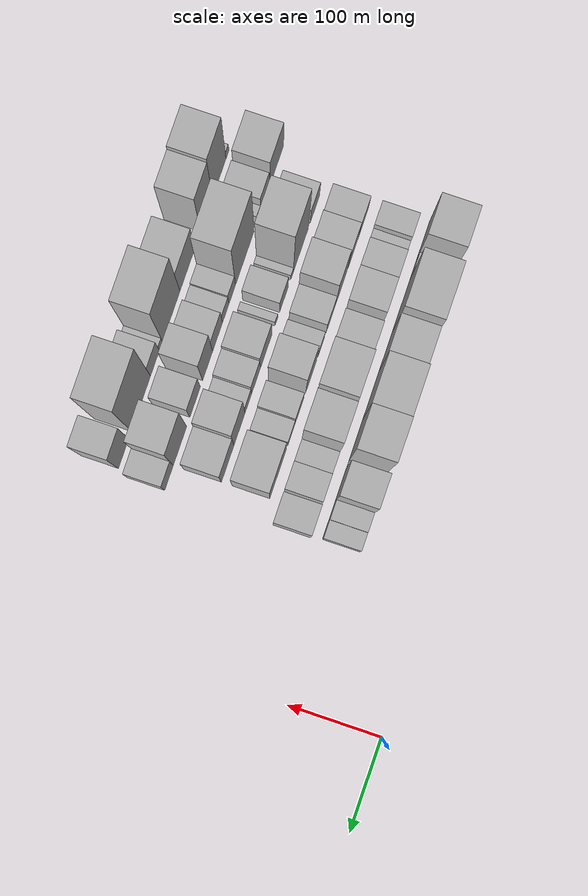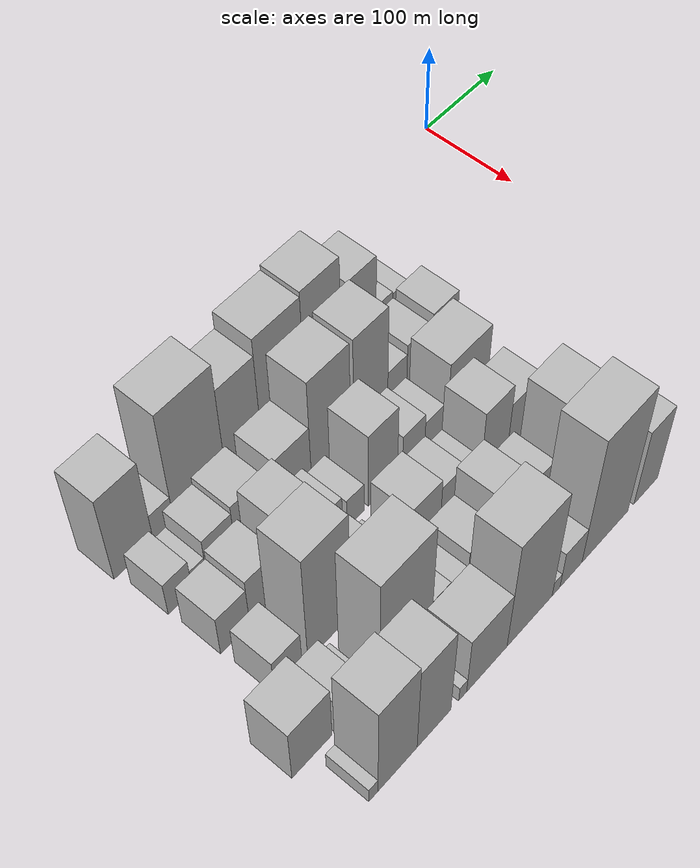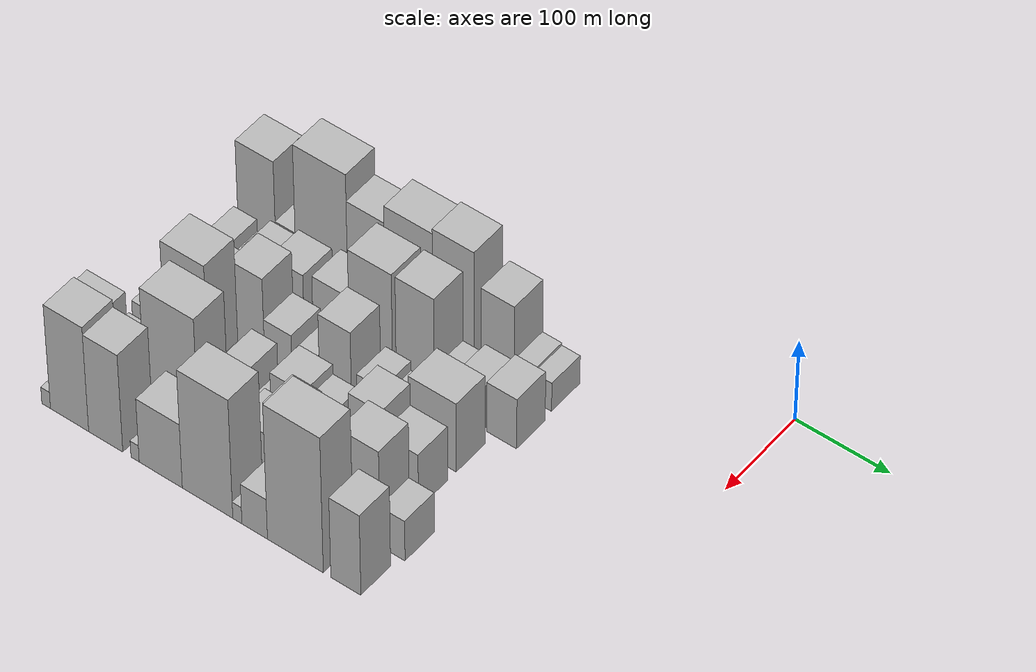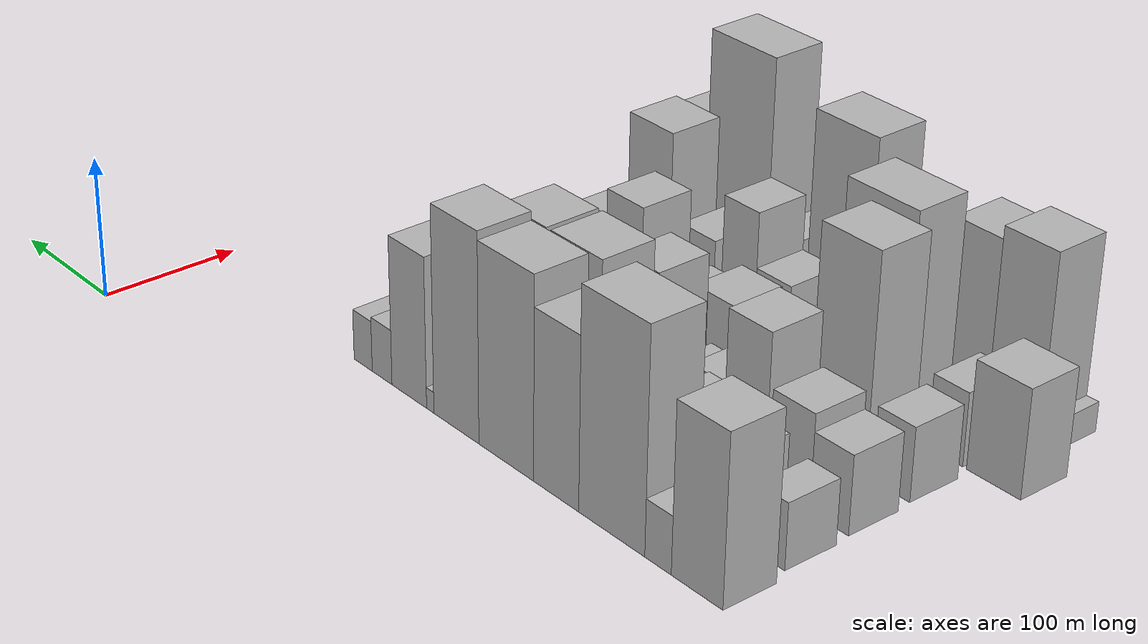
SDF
<sdf version="1.6">
 <world name="default">
  <model name="building_11">
   <static>1</static>
   <pose>100.0000 -494.0086 0 0.000000 0.000000 0.000000</pose>
   <link name="link">
    <pose>0 0 57.00 0 0 0</pose>
    <collision name="collision"><geometry><box><size>40.0000 42.3107 114.0000</size></box></geometry></collision>
    <visual name="visual">
     <cast_shadows>0</cast_shadows>
     <geometry><box><size>40.0000 42.3107 114.0000</size></box></geometry>
     <material>
      <script>
       <uri>model://HANNAS_wall/materials/scripts</uri>
       <uri>model://HANNAS_wall/materials/textures</uri>
       <name>vrc/HANNAS_wall</name>
      </script>
     </material>
    </visual>
   </link>
  </model>
  <model name="building_12">
   <static>1</static>
   <pose>100.0000 -461.6784 0 0.000000 0.000000 0.000000</pose>
   <link name="link">
    <pose>0 0 19.50 0 0 0</pose>
    <collision name="collision"><geometry><box><size>40.0000 22.3498 39.0000</size></box></geometry></collision>
    <visual name="visual">
     <cast_shadows>0</cast_shadows>
     <geometry><box><size>40.0000 22.3498 39.0000</size></box></geometry>
     <material>
      <script>
       <uri>model://HANNAS_wall/materials/scripts</uri>
       <uri>model://HANNAS_wall/materials/textures</uri>
       <name>vrc/HANNAS_wall</name>
      </script>
     </material>
    </visual>
   </link>
  </model>
  <model name="building_13">
   <static>1</static>
   <pose>100.0000 -421.5233 0 0.000000 0.000000 0.000000</pose>
   <link name="link">
    <pose>0 0 75.00 0 0 0</pose>
    <collision name="collision"><geometry><box><size>40.0000 57.9604 150.0000</size></box></geometry></collision>
    <visual name="visual">
     <cast_shadows>0</cast_shadows>
     <geometry><box><size>40.0000 57.9604 150.0000</size></box></geometry>
     <material>
      <script>
       <uri>model://HANNAS_wall/materials/scripts</uri>
       <uri>model://HANNAS_wall/materials/textures</uri>
       <name>vrc/HANNAS_wall</name>
      </script>
     </material>
    </visual>
   </link>
  </model>
  <model name="building_14">
   <static>1</static>
   <pose>100.0000 -371.8786 0 0.000000 0.000000 0.000000</pose>
   <link name="link">
    <pose>0 0 58.50 0 0 0</pose>
    <collision name="collision"><geometry><box><size>40.0000 41.3288 117.0000</size></box></geometry></collision>
    <visual name="visual">
     <cast_shadows>0</cast_shadows>
     <geometry><box><size>40.0000 41.3288 117.0000</size></box></geometry>
     <material>
      <script>
       <uri>model://HANNAS_wall/materials/scripts</uri>
       <uri>model://HANNAS_wall/materials/textures</uri>
       <name>vrc/HANNAS_wall</name>
      </script>
     </material>
    </visual>
   </link>
  </model>
  <model name="building_15">
   <static>1</static>
   <pose>100.0000 -325.0603 0 0.000000 0.000000 0.000000</pose>
   <link name="link">
    <pose>0 0 69.00 0 0 0</pose>
    <collision name="collision"><geometry><box><size>40.0000 52.3078 138.0000</size></box></geometry></collision>
    <visual name="visual">
     <cast_shadows>0</cast_shadows>
     <geometry><box><size>40.0000 52.3078 138.0000</size></box></geometry>
     <material>
      <script>
       <uri>model://HANNAS_wall/materials/scripts</uri>
       <uri>model://HANNAS_wall/materials/textures</uri>
       <name>vrc/HANNAS_wall</name>
      </script>
     </material>
    </visual>
   </link>
  </model>
  <model name="building_16">
   <static>1</static>
   <pose>100.0000 -276.4552 0 0.000000 0.000000 0.000000</pose>
   <link name="link">
    <pose>0 0 72.00 0 0 0</pose>
    <collision name="collision"><geometry><box><size>40.0000 44.9025 144.0000</size></box></geometry></collision>
    <visual name="visual">
     <cast_shadows>0</cast_shadows>
     <geometry><box><size>40.0000 44.9025 144.0000</size></box></geometry>
     <material>
      <script>
       <uri>model://HANNAS_wall/materials/scripts</uri>
       <uri>model://HANNAS_wall/materials/textures</uri>
       <name>vrc/HANNAS_wall</name>
      </script>
     </material>
    </visual>
   </link>
  </model>
  <model name="building_17">
   <static>1</static>
   <pose>100.0000 -250.2787 0 0.000000 0.000000 0.000000</pose>
   <link name="link">
    <pose>0 0 7.50 0 0 0</pose>
    <collision name="collision"><geometry><box><size>40.0000 7.4505 15.0000</size></box></geometry></collision>
    <visual name="visual">
     <cast_shadows>0</cast_shadows>
     <geometry><box><size>40.0000 7.4505 15.0000</size></box></geometry>
     <material>
      <script>
       <uri>model://HANNAS_wall/materials/scripts</uri>
       <uri>model://HANNAS_wall/materials/textures</uri>
       <name>vrc/HANNAS_wall</name>
      </script>
     </material>
    </visual>
   </link>
  </model>
  <model name="building_18">
   <static>1</static>
   <pose>100.0000 -228.5596 0 0.000000 0.000000 0.000000</pose>
   <link name="link">
    <pose>0 0 52.50 0 0 0</pose>
    <collision name="collision"><geometry><box><size>40.0000 35.9877 105.0000</size></box></geometry></collision>
    <visual name="visual">
     <cast_shadows>0</cast_shadows>
     <geometry><box><size>40.0000 35.9877 105.0000</size></box></geometry>
     <material>
      <script>
       <uri>model://HANNAS_wall/materials/scripts</uri>
       <uri>model://HANNAS_wall/materials/textures</uri>
       <name>vrc/HANNAS_wall</name>
      </script>
     </material>
    </visual>
   </link>
  </model>
  <model name="building_19">
   <static>1</static>
   <pose>100.0000 -200.0967 0 0.000000 0.000000 0.000000</pose>
   <link name="link">
    <pose>0 0 19.50 0 0 0</pose>
    <collision name="collision"><geometry><box><size>40.0000 20.9381 39.0000</size></box></geometry></collision>
    <visual name="visual">
     <cast_shadows>0</cast_shadows>
     <geometry><box><size>40.0000 20.9381 39.0000</size></box></geometry>
     <material>
      <script>
       <uri>model://HANNAS_wall/materials/scripts</uri>
       <uri>model://HANNAS_wall/materials/textures</uri>
       <name>vrc/HANNAS_wall</name>
      </script>
     </material>
    </visual>
   </link>
  </model>
  <model name="building_20">
   <static>1</static>
   <pose>100.0000 -179.8525 0 0.000000 0.000000 0.000000</pose>
   <link name="link">
    <pose>0 0 18.00 0 0 0</pose>
    <collision name="collision"><geometry><box><size>40.0000 19.5503 36.0000</size></box></geometry></collision>
    <visual name="visual">
     <cast_shadows>0</cast_shadows>
     <geometry><box><size>40.0000 19.5503 36.0000</size></box></geometry>
     <material>
      <script>
       <uri>model://HANNAS_wall/materials/scripts</uri>
       <uri>model://HANNAS_wall/materials/textures</uri>
       <name>vrc/HANNAS_wall</name>
      </script>
     </material>
    </visual>
   </link>
  </model>
  <model name="building_59">
   <static>1</static>
   <pose>152.0000 -496.1585 0 0.000000 0.000000 0.000000</pose>
   <link name="link">
    <pose>0 0 22.50 0 0 0</pose>
    <collision name="collision"><geometry><box><size>40.0000 25.9210 45.0000</size></box></geometry></collision>
    <visual name="visual">
     <cast_shadows>0</cast_shadows>
     <geometry><box><size>40.0000 25.9210 45.0000</size></box></geometry>
     <material>
      <script>
       <uri>model://HANNAS_wall/materials/scripts</uri>
       <uri>model://HANNAS_wall/materials/textures</uri>
       <name>vrc/HANNAS_wall</name>
      </script>
     </material>
    </visual>
   </link>
  </model>
  <model name="building_60">
   <static>1</static>
   <pose>152.0000 -475.3873 0 0.000000 0.000000 0.000000</pose>
   <link name="link">
    <pose>0 0 15.00 0 0 0</pose>
    <collision name="collision"><geometry><box><size>40.0000 15.6216 30.0000</size></box></geometry></collision>
    <visual name="visual">
     <cast_shadows>0</cast_shadows>
     <geometry><box><size>40.0000 15.6216 30.0000</size></box></geometry>
     <material>
      <script>
       <uri>model://HANNAS_wall/materials/scripts</uri>
       <uri>model://HANNAS_wall/materials/textures</uri>
       <name>vrc/HANNAS_wall</name>
      </script>
     </material>
    </visual>
   </link>
  </model>
  <model name="building_61">
   <static>1</static>
   <pose>152.0000 -451.9017 0 0.000000 0.000000 0.000000</pose>
   <link name="link">
    <pose>0 0 27.00 0 0 0</pose>
    <collision name="collision"><geometry><box><size>40.0000 31.3496 54.0000</size></box></geometry></collision>
    <visual name="visual">
     <cast_shadows>0</cast_shadows>
     <geometry><box><size>40.0000 31.3496 54.0000</size></box></geometry>
     <material>
      <script>
       <uri>model://HANNAS_wall/materials/scripts</uri>
       <uri>model://HANNAS_wall/materials/textures</uri>
       <name>vrc/HANNAS_wall</name>
      </script>
     </material>
    </visual>
   </link>
  </model>
  <model name="building_62">
   <static>1</static>
   <pose>152.0000 -417.8769 0 0.000000 0.000000 0.000000</pose>
   <link name="link">
    <pose>0 0 31.50 0 0 0</pose>
    <collision name="collision"><geometry><box><size>40.0000 36.7000 63.0000</size></box></geometry></collision>
    <visual name="visual">
     <cast_shadows>0</cast_shadows>
     <geometry><box><size>40.0000 36.7000 63.0000</size></box></geometry>
     <material>
      <script>
       <uri>model://HANNAS_wall/materials/scripts</uri>
       <uri>model://HANNAS_wall/materials/textures</uri>
       <name>vrc/HANNAS_wall</name>
      </script>
     </material>
    </visual>
   </link>
  </model>
  <model name="building_63">
   <static>1</static>
   <pose>152.0000 -369.4422 0 0.000000 0.000000 0.000000</pose>
   <link name="link">
    <pose>0 0 34.50 0 0 0</pose>
    <collision name="collision"><geometry><box><size>40.0000 40.1694 69.0000</size></box></geometry></collision>
    <visual name="visual">
     <cast_shadows>0</cast_shadows>
     <geometry><box><size>40.0000 40.1694 69.0000</size></box></geometry>
     <material>
      <script>
       <uri>model://HANNAS_wall/materials/scripts</uri>
       <uri>model://HANNAS_wall/materials/textures</uri>
       <name>vrc/HANNAS_wall</name>
      </script>
     </material>
    </visual>
   </link>
  </model>
  <model name="building_64">
   <static>1</static>
   <pose>152.0000 -325.7028 0 0.000000 0.000000 0.000000</pose>
   <link name="link">
    <pose>0 0 64.50 0 0 0</pose>
    <collision name="collision"><geometry><box><size>40.0000 47.3093 129.0000</size></box></geometry></collision>
    <visual name="visual">
     <cast_shadows>0</cast_shadows>
     <geometry><box><size>40.0000 47.3093 129.0000</size></box></geometry>
     <material>
      <script>
       <uri>model://HANNAS_wall/materials/scripts</uri>
       <uri>model://HANNAS_wall/materials/textures</uri>
       <name>vrc/HANNAS_wall</name>
      </script>
     </material>
    </visual>
   </link>
  </model>
  <model name="building_65">
   <static>1</static>
   <pose>152.0000 -277.2909 0 0.000000 0.000000 0.000000</pose>
   <link name="link">
    <pose>0 0 64.50 0 0 0</pose>
    <collision name="collision"><geometry><box><size>40.0000 41.5145 129.0000</size></box></geometry></collision>
    <visual name="visual">
     <cast_shadows>0</cast_shadows>
     <geometry><box><size>40.0000 41.5145 129.0000</size></box></geometry>
     <material>
      <script>
       <uri>model://HANNAS_wall/materials/scripts</uri>
       <uri>model://HANNAS_wall/materials/textures</uri>
       <name>vrc/HANNAS_wall</name>
      </script>
     </material>
    </visual>
   </link>
  </model>
  <model name="building_66">
   <static>1</static>
   <pose>152.0000 -244.4971 0 0.000000 0.000000 0.000000</pose>
   <link name="link">
    <pose>0 0 21.00 0 0 0</pose>
    <collision name="collision"><geometry><box><size>40.0000 24.0732 42.0000</size></box></geometry></collision>
    <visual name="visual">
     <cast_shadows>0</cast_shadows>
     <geometry><box><size>40.0000 24.0732 42.0000</size></box></geometry>
     <material>
      <script>
       <uri>model://HANNAS_wall/materials/scripts</uri>
       <uri>model://HANNAS_wall/materials/textures</uri>
       <name>vrc/HANNAS_wall</name>
      </script>
     </material>
    </visual>
   </link>
  </model>
  <model name="building_67">
   <static>1</static>
   <pose>152.0000 -217.7612 0 0.000000 0.000000 0.000000</pose>
   <link name="link">
    <pose>0 0 27.00 0 0 0</pose>
    <collision name="collision"><geometry><box><size>40.0000 29.3986 54.0000</size></box></geometry></collision>
    <visual name="visual">
     <cast_shadows>0</cast_shadows>
     <geometry><box><size>40.0000 29.3986 54.0000</size></box></geometry>
     <material>
      <script>
       <uri>model://HANNAS_wall/materials/scripts</uri>
       <uri>model://HANNAS_wall/materials/textures</uri>
       <name>vrc/HANNAS_wall</name>
      </script>
     </material>
    </visual>
   </link>
  </model>
  <model name="building_68">
   <static>1</static>
   <pose>152.0000 -183.9146 0 0.000000 0.000000 0.000000</pose>
   <link name="link">
    <pose>0 0 31.50 0 0 0</pose>
    <collision name="collision"><geometry><box><size>40.0000 32.2947 63.0000</size></box></geometry></collision>
    <visual name="visual">
     <cast_shadows>0</cast_shadows>
     <geometry><box><size>40.0000 32.2947 63.0000</size></box></geometry>
     <material>
      <script>
       <uri>model://HANNAS_wall/materials/scripts</uri>
       <uri>model://HANNAS_wall/materials/textures</uri>
       <name>vrc/HANNAS_wall</name>
      </script>
     </material>
    </visual>
   </link>
  </model>
  <model name="building_111">
   <static>1</static>
   <pose>204.0000 -491.1103 0 0.000000 0.000000 0.000000</pose>
   <link name="link">
    <pose>0 0 27.00 0 0 0</pose>
    <collision name="collision"><geometry><box><size>40.0000 31.3531 54.0000</size></box></geometry></collision>
    <visual name="visual">
     <cast_shadows>0</cast_shadows>
     <geometry><box><size>40.0000 31.3531 54.0000</size></box></geometry>
     <material>
      <script>
       <uri>model://HANNAS_wall/materials/scripts</uri>
       <uri>model://HANNAS_wall/materials/textures</uri>
       <name>vrc/HANNAS_wall</name>
      </script>
     </material>
    </visual>
   </link>
  </model>
  <model name="building_112">
   <static>1</static>
   <pose>204.0000 -458.0717 0 0.000000 0.000000 0.000000</pose>
   <link name="link">
    <pose>0 0 33.00 0 0 0</pose>
    <collision name="collision"><geometry><box><size>40.0000 34.7243 66.0000</size></box></geometry></collision>
    <visual name="visual">
     <cast_shadows>0</cast_shadows>
     <geometry><box><size>40.0000 34.7243 66.0000</size></box></geometry>
     <material>
      <script>
       <uri>model://HANNAS_wall/materials/scripts</uri>
       <uri>model://HANNAS_wall/materials/textures</uri>
       <name>vrc/HANNAS_wall</name>
      </script>
     </material>
    </visual>
   </link>
  </model>
  <model name="building_113">
   <static>1</static>
   <pose>204.0000 -419.4818 0 0.000000 0.000000 0.000000</pose>
   <link name="link">
    <pose>0 0 51.00 0 0 0</pose>
    <collision name="collision"><geometry><box><size>40.0000 36.4555 102.0000</size></box></geometry></collision>
    <visual name="visual">
     <cast_shadows>0</cast_shadows>
     <geometry><box><size>40.0000 36.4555 102.0000</size></box></geometry>
     <material>
      <script>
       <uri>model://HANNAS_wall/materials/scripts</uri>
       <uri>model://HANNAS_wall/materials/textures</uri>
       <name>vrc/HANNAS_wall</name>
      </script>
     </material>
    </visual>
   </link>
  </model>
  <model name="building_114">
   <static>1</static>
   <pose>204.0000 -386.0688 0 0.000000 0.000000 0.000000</pose>
   <link name="link">
    <pose>0 0 25.50 0 0 0</pose>
    <collision name="collision"><geometry><box><size>40.0000 30.3705 51.0000</size></box></geometry></collision>
    <visual name="visual">
     <cast_shadows>0</cast_shadows>
     <geometry><box><size>40.0000 30.3705 51.0000</size></box></geometry>
     <material>
      <script>
       <uri>model://HANNAS_wall/materials/scripts</uri>
       <uri>model://HANNAS_wall/materials/textures</uri>
       <name>vrc/HANNAS_wall</name>
      </script>
     </material>
    </visual>
   </link>
  </model>
  <model name="building_115">
   <static>1</static>
   <pose>204.0000 -355.6898 0 0.000000 0.000000 0.000000</pose>
   <link name="link">
    <pose>0 0 19.50 0 0 0</pose>
    <collision name="collision"><geometry><box><size>40.0000 20.3875 39.0000</size></box></geometry></collision>
    <visual name="visual">
     <cast_shadows>0</cast_shadows>
     <geometry><box><size>40.0000 20.3875 39.0000</size></box></geometry>
     <material>
      <script>
       <uri>model://HANNAS_wall/materials/scripts</uri>
       <uri>model://HANNAS_wall/materials/textures</uri>
       <name>vrc/HANNAS_wall</name>
      </script>
     </material>
    </visual>
   </link>
  </model>
  <model name="building_116">
   <static>1</static>
   <pose>204.0000 -323.0249 0 0.000000 0.000000 0.000000</pose>
   <link name="link">
    <pose>0 0 49.50 0 0 0</pose>
    <collision name="collision"><geometry><box><size>40.0000 34.9424 99.0000</size></box></geometry></collision>
    <visual name="visual">
     <cast_shadows>0</cast_shadows>
     <geometry><box><size>40.0000 34.9424 99.0000</size></box></geometry>
     <material>
      <script>
       <uri>model://HANNAS_wall/materials/scripts</uri>
       <uri>model://HANNAS_wall/materials/textures</uri>
       <name>vrc/HANNAS_wall</name>
      </script>
     </material>
    </visual>
   </link>
  </model>
  <model name="building_117">
   <static>1</static>
   <pose>204.0000 -285.7925 0 0.000000 0.000000 0.000000</pose>
   <link name="link">
    <pose>0 0 25.50 0 0 0</pose>
    <collision name="collision"><geometry><box><size>40.0000 27.5222 51.0000</size></box></geometry></collision>
    <visual name="visual">
     <cast_shadows>0</cast_shadows>
     <geometry><box><size>40.0000 27.5222 51.0000</size></box></geometry>
     <material>
      <script>
       <uri>model://HANNAS_wall/materials/scripts</uri>
       <uri>model://HANNAS_wall/materials/textures</uri>
       <name>vrc/HANNAS_wall</name>
      </script>
     </material>
    </visual>
   </link>
  </model>
  <model name="building_118">
   <static>1</static>
   <pose>204.0000 -260.3984 0 0.000000 0.000000 0.000000</pose>
   <link name="link">
    <pose>0 0 19.50 0 0 0</pose>
    <collision name="collision"><geometry><box><size>40.0000 23.2660 39.0000</size></box></geometry></collision>
    <visual name="visual">
     <cast_shadows>0</cast_shadows>
     <geometry><box><size>40.0000 23.2660 39.0000</size></box></geometry>
     <material>
      <script>
       <uri>model://HANNAS_wall/materials/scripts</uri>
       <uri>model://HANNAS_wall/materials/textures</uri>
       <name>vrc/HANNAS_wall</name>
      </script>
     </material>
    </visual>
   </link>
  </model>
  <model name="building_119">
   <static>1</static>
   <pose>204.0000 -217.9779 0 0.000000 0.000000 0.000000</pose>
   <link name="link">
    <pose>0 0 43.50 0 0 0</pose>
    <collision name="collision"><geometry><box><size>40.0000 51.5750 87.0000</size></box></geometry></collision>
    <visual name="visual">
     <cast_shadows>0</cast_shadows>
     <geometry><box><size>40.0000 51.5750 87.0000</size></box></geometry>
     <material>
      <script>
       <uri>model://HANNAS_wall/materials/scripts</uri>
       <uri>model://HANNAS_wall/materials/textures</uri>
       <name>vrc/HANNAS_wall</name>
      </script>
     </material>
    </visual>
   </link>
  </model>
  <model name="building_161">
   <static>1</static>
   <pose>256.0000 -489.5525 0 0.000000 0.000000 0.000000</pose>
   <link name="link">
    <pose>0 0 25.50 0 0 0</pose>
    <collision name="collision"><geometry><box><size>40.0000 29.8540 51.0000</size></box></geometry></collision>
    <visual name="visual">
     <cast_shadows>0</cast_shadows>
     <geometry><box><size>40.0000 29.8540 51.0000</size></box></geometry>
     <material>
      <script>
       <uri>model://HANNAS_wall/materials/scripts</uri>
       <uri>model://HANNAS_wall/materials/textures</uri>
       <name>vrc/HANNAS_wall</name>
      </script>
     </material>
    </visual>
   </link>
  </model>
  <model name="building_162">
   <static>1</static>
   <pose>256.0000 -444.6601 0 0.000000 0.000000 0.000000</pose>
   <link name="link">
    <pose>0 0 75.00 0 0 0</pose>
    <collision name="collision"><geometry><box><size>40.0000 47.9308 150.0000</size></box></geometry></collision>
    <visual name="visual">
     <cast_shadows>0</cast_shadows>
     <geometry><box><size>40.0000 47.9308 150.0000</size></box></geometry>
     <material>
      <script>
       <uri>model://HANNAS_wall/materials/scripts</uri>
       <uri>model://HANNAS_wall/materials/textures</uri>
       <name>vrc/HANNAS_wall</name>
      </script>
     </material>
    </visual>
   </link>
  </model>
  <model name="building_163">
   <static>1</static>
   <pose>256.0000 -416.4620 0 0.000000 0.000000 0.000000</pose>
   <link name="link">
    <pose>0 0 10.50 0 0 0</pose>
    <collision name="collision"><geometry><box><size>40.0000 8.4655 21.0000</size></box></geometry></collision>
    <visual name="visual">
     <cast_shadows>0</cast_shadows>
     <geometry><box><size>40.0000 8.4655 21.0000</size></box></geometry>
     <material>
      <script>
       <uri>model://HANNAS_wall/materials/scripts</uri>
       <uri>model://HANNAS_wall/materials/textures</uri>
       <name>vrc/HANNAS_wall</name>
      </script>
     </material>
    </visual>
   </link>
  </model>
  <model name="building_164">
   <static>1</static>
   <pose>256.0000 -390.4675 0 0.000000 0.000000 0.000000</pose>
   <link name="link">
    <pose>0 0 24.00 0 0 0</pose>
    <collision name="collision"><geometry><box><size>40.0000 27.5234 48.0000</size></box></geometry></collision>
    <visual name="visual">
     <cast_shadows>0</cast_shadows>
     <geometry><box><size>40.0000 27.5234 48.0000</size></box></geometry>
     <material>
      <script>
       <uri>model://HANNAS_wall/materials/scripts</uri>
       <uri>model://HANNAS_wall/materials/textures</uri>
       <name>vrc/HANNAS_wall</name>
      </script>
     </material>
    </visual>
   </link>
  </model>
  <model name="building_165">
   <static>1</static>
   <pose>256.0000 -366.2476 0 0.000000 0.000000 0.000000</pose>
   <link name="link">
    <pose>0 0 10.50 0 0 0</pose>
    <collision name="collision"><geometry><box><size>40.0000 8.9162 21.0000</size></box></geometry></collision>
    <visual name="visual">
     <cast_shadows>0</cast_shadows>
     <geometry><box><size>40.0000 8.9162 21.0000</size></box></geometry>
     <material>
      <script>
       <uri>model://HANNAS_wall/materials/scripts</uri>
       <uri>model://HANNAS_wall/materials/textures</uri>
       <name>vrc/HANNAS_wall</name>
      </script>
     </material>
    </visual>
   </link>
  </model>
  <model name="building_166">
   <static>1</static>
   <pose>256.0000 -333.5906 0 0.000000 0.000000 0.000000</pose>
   <link name="link">
    <pose>0 0 31.50 0 0 0</pose>
    <collision name="collision"><geometry><box><size>40.0000 36.3980 63.0000</size></box></geometry></collision>
    <visual name="visual">
     <cast_shadows>0</cast_shadows>
     <geometry><box><size>40.0000 36.3980 63.0000</size></box></geometry>
     <material>
      <script>
       <uri>model://HANNAS_wall/materials/scripts</uri>
       <uri>model://HANNAS_wall/materials/textures</uri>
       <name>vrc/HANNAS_wall</name>
      </script>
     </material>
    </visual>
   </link>
  </model>
  <model name="building_167">
   <static>1</static>
   <pose>256.0000 -301.4216 0 0.000000 0.000000 0.000000</pose>
   <link name="link">
    <pose>0 0 25.50 0 0 0</pose>
    <collision name="collision"><geometry><box><size>40.0000 27.9401 51.0000</size></box></geometry></collision>
    <visual name="visual">
     <cast_shadows>0</cast_shadows>
     <geometry><box><size>40.0000 27.9401 51.0000</size></box></geometry>
     <material>
      <script>
       <uri>model://HANNAS_wall/materials/scripts</uri>
       <uri>model://HANNAS_wall/materials/textures</uri>
       <name>vrc/HANNAS_wall</name>
      </script>
     </material>
    </visual>
   </link>
  </model>
  <model name="building_168">
   <static>1</static>
   <pose>256.0000 -276.9595 0 0.000000 0.000000 0.000000</pose>
   <link name="link">
    <pose>0 0 18.00 0 0 0</pose>
    <collision name="collision"><geometry><box><size>40.0000 20.9841 36.0000</size></box></geometry></collision>
    <visual name="visual">
     <cast_shadows>0</cast_shadows>
     <geometry><box><size>40.0000 20.9841 36.0000</size></box></geometry>
     <material>
      <script>
       <uri>model://HANNAS_wall/materials/scripts</uri>
       <uri>model://HANNAS_wall/materials/textures</uri>
       <name>vrc/HANNAS_wall</name>
      </script>
     </material>
    </visual>
   </link>
  </model>
  <model name="building_169">
   <static>1</static>
   <pose>256.0000 -249.1043 0 0.000000 0.000000 0.000000</pose>
   <link name="link">
    <pose>0 0 48.00 0 0 0</pose>
    <collision name="collision"><geometry><box><size>40.0000 34.7263 96.0000</size></box></geometry></collision>
    <visual name="visual">
     <cast_shadows>0</cast_shadows>
     <geometry><box><size>40.0000 34.7263 96.0000</size></box></geometry>
     <material>
      <script>
       <uri>model://HANNAS_wall/materials/scripts</uri>
       <uri>model://HANNAS_wall/materials/textures</uri>
       <name>vrc/HANNAS_wall</name>
      </script>
     </material>
    </visual>
   </link>
  </model>
  <model name="building_170">
   <static>1</static>
   <pose>256.0000 -211.9956 0 0.000000 0.000000 0.000000</pose>
   <link name="link">
    <pose>0 0 34.50 0 0 0</pose>
    <collision name="collision"><geometry><box><size>40.0000 39.4911 69.0000</size></box></geometry></collision>
    <visual name="visual">
     <cast_shadows>0</cast_shadows>
     <geometry><box><size>40.0000 39.4911 69.0000</size></box></geometry>
     <material>
      <script>
       <uri>model://HANNAS_wall/materials/scripts</uri>
       <uri>model://HANNAS_wall/materials/textures</uri>
       <name>vrc/HANNAS_wall</name>
      </script>
     </material>
    </visual>
   </link>
  </model>
  <model name="building_208">
   <static>1</static>
   <pose>308.0000 -521.5534 0 0.000000 0.000000 0.000000</pose>
   <link name="link">
    <pose>0 0 37.50 0 0 0</pose>
    <collision name="collision"><geometry><box><size>40.0000 42.3962 75.0000</size></box></geometry></collision>
    <visual name="visual">
     <cast_shadows>0</cast_shadows>
     <geometry><box><size>40.0000 42.3962 75.0000</size></box></geometry>
     <material>
      <script>
       <uri>model://HANNAS_wall/materials/scripts</uri>
       <uri>model://HANNAS_wall/materials/textures</uri>
       <name>vrc/HANNAS_wall</name>
      </script>
     </material>
    </visual>
   </link>
  </model>
  <model name="building_209">
   <static>1</static>
   <pose>308.0000 -483.1942 0 0.000000 0.000000 0.000000</pose>
   <link name="link">
    <pose>0 0 25.50 0 0 0</pose>
    <collision name="collision"><geometry><box><size>40.0000 28.3223 51.0000</size></box></geometry></collision>
    <visual name="visual">
     <cast_shadows>0</cast_shadows>
     <geometry><box><size>40.0000 28.3223 51.0000</size></box></geometry>
     <material>
      <script>
       <uri>model://HANNAS_wall/materials/scripts</uri>
       <uri>model://HANNAS_wall/materials/textures</uri>
       <name>vrc/HANNAS_wall</name>
      </script>
     </material>
    </visual>
   </link>
  </model>
  <model name="building_210">
   <static>1</static>
   <pose>308.0000 -463.0001 0 0.000000 0.000000 0.000000</pose>
   <link name="link">
    <pose>0 0 13.50 0 0 0</pose>
    <collision name="collision"><geometry><box><size>40.0000 12.0659 27.0000</size></box></geometry></collision>
    <visual name="visual">
     <cast_shadows>0</cast_shadows>
     <geometry><box><size>40.0000 12.0659 27.0000</size></box></geometry>
     <material>
      <script>
       <uri>model://HANNAS_wall/materials/scripts</uri>
       <uri>model://HANNAS_wall/materials/textures</uri>
       <name>vrc/HANNAS_wall</name>
      </script>
     </material>
    </visual>
   </link>
  </model>
  <model name="building_211">
   <static>1</static>
   <pose>308.0000 -418.5583 0 0.000000 0.000000 0.000000</pose>
   <link name="link">
    <pose>0 0 75.00 0 0 0</pose>
    <collision name="collision"><geometry><box><size>40.0000 58.8177 150.0000</size></box></geometry></collision>
    <visual name="visual">
     <cast_shadows>0</cast_shadows>
     <geometry><box><size>40.0000 58.8177 150.0000</size></box></geometry>
     <material>
      <script>
       <uri>model://HANNAS_wall/materials/scripts</uri>
       <uri>model://HANNAS_wall/materials/textures</uri>
       <name>vrc/HANNAS_wall</name>
      </script>
     </material>
    </visual>
   </link>
  </model>
  <model name="building_212">
   <static>1</static>
   <pose>308.0000 -378.5823 0 0.000000 0.000000 0.000000</pose>
   <link name="link">
    <pose>0 0 21.00 0 0 0</pose>
    <collision name="collision"><geometry><box><size>40.0000 21.1342 42.0000</size></box></geometry></collision>
    <visual name="visual">
     <cast_shadows>0</cast_shadows>
     <geometry><box><size>40.0000 21.1342 42.0000</size></box></geometry>
     <material>
      <script>
       <uri>model://HANNAS_wall/materials/scripts</uri>
       <uri>model://HANNAS_wall/materials/textures</uri>
       <name>vrc/HANNAS_wall</name>
      </script>
     </material>
    </visual>
   </link>
  </model>
  <model name="building_213">
   <static>1</static>
   <pose>308.0000 -357.7737 0 0.000000 0.000000 0.000000</pose>
   <link name="link">
    <pose>0 0 18.00 0 0 0</pose>
    <collision name="collision"><geometry><box><size>40.0000 20.4831 36.0000</size></box></geometry></collision>
    <visual name="visual">
     <cast_shadows>0</cast_shadows>
     <geometry><box><size>40.0000 20.4831 36.0000</size></box></geometry>
     <material>
      <script>
       <uri>model://HANNAS_wall/materials/scripts</uri>
       <uri>model://HANNAS_wall/materials/textures</uri>
       <name>vrc/HANNAS_wall</name>
      </script>
     </material>
    </visual>
   </link>
  </model>
  <model name="building_214">
   <static>1</static>
   <pose>308.0000 -331.9394 0 0.000000 0.000000 0.000000</pose>
   <link name="link">
    <pose>0 0 28.50 0 0 0</pose>
    <collision name="collision"><geometry><box><size>40.0000 31.1856 57.0000</size></box></geometry></collision>
    <visual name="visual">
     <cast_shadows>0</cast_shadows>
     <geometry><box><size>40.0000 31.1856 57.0000</size></box></geometry>
     <material>
      <script>
       <uri>model://HANNAS_wall/materials/scripts</uri>
       <uri>model://HANNAS_wall/materials/textures</uri>
       <name>vrc/HANNAS_wall</name>
      </script>
     </material>
    </visual>
   </link>
  </model>
  <model name="building_215">
   <static>1</static>
   <pose>308.0000 -300.5163 0 0.000000 0.000000 0.000000</pose>
   <link name="link">
    <pose>0 0 48.00 0 0 0</pose>
    <collision name="collision"><geometry><box><size>40.0000 31.6606 96.0000</size></box></geometry></collision>
    <visual name="visual">
     <cast_shadows>0</cast_shadows>
     <geometry><box><size>40.0000 31.6606 96.0000</size></box></geometry>
     <material>
      <script>
       <uri>model://HANNAS_wall/materials/scripts</uri>
       <uri>model://HANNAS_wall/materials/textures</uri>
       <name>vrc/HANNAS_wall</name>
      </script>
     </material>
    </visual>
   </link>
  </model>
  <model name="building_216">
   <static>1</static>
   <pose>308.0000 -261.1857 0 0.000000 0.000000 0.000000</pose>
   <link name="link">
    <pose>0 0 30.00 0 0 0</pose>
    <collision name="collision"><geometry><box><size>40.0000 33.0006 60.0000</size></box></geometry></collision>
    <visual name="visual">
     <cast_shadows>0</cast_shadows>
     <geometry><box><size>40.0000 33.0006 60.0000</size></box></geometry>
     <material>
      <script>
       <uri>model://HANNAS_wall/materials/scripts</uri>
       <uri>model://HANNAS_wall/materials/textures</uri>
       <name>vrc/HANNAS_wall</name>
      </script>
     </material>
    </visual>
   </link>
  </model>
  <model name="building_217">
   <static>1</static>
   <pose>308.0000 -213.6222 0 0.000000 0.000000 0.000000</pose>
   <link name="link">
    <pose>0 0 60.00 0 0 0</pose>
    <collision name="collision"><geometry><box><size>40.0000 42.1264 120.0000</size></box></geometry></collision>
    <visual name="visual">
     <cast_shadows>0</cast_shadows>
     <geometry><box><size>40.0000 42.1264 120.0000</size></box></geometry>
     <material>
      <script>
       <uri>model://HANNAS_wall/materials/scripts</uri>
       <uri>model://HANNAS_wall/materials/textures</uri>
       <name>vrc/HANNAS_wall</name>
      </script>
     </material>
    </visual>
   </link>
  </model>
  <model name="building_218">
   <static>1</static>
   <pose>308.0000 -179.1540 0 0.000000 0.000000 0.000000</pose>
   <link name="link">
    <pose>0 0 25.50 0 0 0</pose>
    <collision name="collision"><geometry><box><size>40.0000 26.8099 51.0000</size></box></geometry></collision>
    <visual name="visual">
     <cast_shadows>0</cast_shadows>
     <geometry><box><size>40.0000 26.8099 51.0000</size></box></geometry>
     <material>
      <script>
       <uri>model://HANNAS_wall/materials/scripts</uri>
       <uri>model://HANNAS_wall/materials/textures</uri>
       <name>vrc/HANNAS_wall</name>
      </script>
     </material>
    </visual>
   </link>
  </model>
  <model name="building_264">
   <static>1</static>
   <pose>360.0000 -515.3574 0 0.000000 0.000000 0.000000</pose>
   <link name="link">
    <pose>0 0 10.50 0 0 0</pose>
    <collision name="collision"><geometry><box><size>40.0000 9.6541 21.0000</size></box></geometry></collision>
    <visual name="visual">
     <cast_shadows>0</cast_shadows>
     <geometry><box><size>40.0000 9.6541 21.0000</size></box></geometry>
     <material>
      <script>
       <uri>model://HANNAS_wall/materials/scripts</uri>
       <uri>model://HANNAS_wall/materials/textures</uri>
       <name>vrc/HANNAS_wall</name>
      </script>
     </material>
    </visual>
   </link>
  </model>
  <model name="building_265">
   <static>1</static>
   <pose>360.0000 -489.2254 0 0.000000 0.000000 0.000000</pose>
   <link name="link">
    <pose>0 0 66.00 0 0 0</pose>
    <collision name="collision"><geometry><box><size>40.0000 42.6099 132.0000</size></box></geometry></collision>
    <visual name="visual">
     <cast_shadows>0</cast_shadows>
     <geometry><box><size>40.0000 42.6099 132.0000</size></box></geometry>
     <material>
      <script>
       <uri>model://HANNAS_wall/materials/scripts</uri>
       <uri>model://HANNAS_wall/materials/textures</uri>
       <name>vrc/HANNAS_wall</name>
      </script>
     </material>
    </visual>
   </link>
  </model>
  <model name="building_266">
   <static>1</static>
   <pose>360.0000 -448.9795 0 0.000000 0.000000 0.000000</pose>
   <link name="link">
    <pose>0 0 61.50 0 0 0</pose>
    <collision name="collision"><geometry><box><size>40.0000 37.8821 123.0000</size></box></geometry></collision>
    <visual name="visual">
     <cast_shadows>0</cast_shadows>
     <geometry><box><size>40.0000 37.8821 123.0000</size></box></geometry>
     <material>
      <script>
       <uri>model://HANNAS_wall/materials/scripts</uri>
       <uri>model://HANNAS_wall/materials/textures</uri>
       <name>vrc/HANNAS_wall</name>
      </script>
     </material>
    </visual>
   </link>
  </model>
  <model name="building_267">
   <static>1</static>
   <pose>360.0000 -416.4811 0 0.000000 0.000000 0.000000</pose>
   <link name="link">
    <pose>0 0 10.50 0 0 0</pose>
    <collision name="collision"><geometry><box><size>40.0000 9.1147 21.0000</size></box></geometry></collision>
    <visual name="visual">
     <cast_shadows>0</cast_shadows>
     <geometry><box><size>40.0000 9.1147 21.0000</size></box></geometry>
     <material>
      <script>
       <uri>model://HANNAS_wall/materials/scripts</uri>
       <uri>model://HANNAS_wall/materials/textures</uri>
       <name>vrc/HANNAS_wall</name>
      </script>
     </material>
    </visual>
   </link>
  </model>
  <model name="building_268">
   <static>1</static>
   <pose>360.0000 -388.2134 0 0.000000 0.000000 0.000000</pose>
   <link name="link">
    <pose>0 0 40.50 0 0 0</pose>
    <collision name="collision"><geometry><box><size>40.0000 47.4208 81.0000</size></box></geometry></collision>
    <visual name="visual">
     <cast_shadows>0</cast_shadows>
     <geometry><box><size>40.0000 47.4208 81.0000</size></box></geometry>
     <material>
      <script>
       <uri>model://HANNAS_wall/materials/scripts</uri>
       <uri>model://HANNAS_wall/materials/textures</uri>
       <name>vrc/HANNAS_wall</name>
      </script>
     </material>
    </visual>
   </link>
  </model>
  <model name="building_269">
   <static>1</static>
   <pose>360.0000 -336.9886 0 0.000000 0.000000 0.000000</pose>
   <link name="link">
    <pose>0 0 75.00 0 0 0</pose>
    <collision name="collision"><geometry><box><size>40.0000 55.0288 150.0000</size></box></geometry></collision>
    <visual name="visual">
     <cast_shadows>0</cast_shadows>
     <geometry><box><size>40.0000 55.0288 150.0000</size></box></geometry>
     <material>
      <script>
       <uri>model://HANNAS_wall/materials/scripts</uri>
       <uri>model://HANNAS_wall/materials/textures</uri>
       <name>vrc/HANNAS_wall</name>
      </script>
     </material>
    </visual>
   </link>
  </model>
  <model name="building_270">
   <static>1</static>
   <pose>360.0000 -304.5203 0 0.000000 0.000000 0.000000</pose>
   <link name="link">
    <pose>0 0 10.50 0 0 0</pose>
    <collision name="collision"><geometry><box><size>40.0000 9.9077 21.0000</size></box></geometry></collision>
    <visual name="visual">
     <cast_shadows>0</cast_shadows>
     <geometry><box><size>40.0000 9.9077 21.0000</size></box></geometry>
     <material>
      <script>
       <uri>model://HANNAS_wall/materials/scripts</uri>
       <uri>model://HANNAS_wall/materials/textures</uri>
       <name>vrc/HANNAS_wall</name>
      </script>
     </material>
    </visual>
   </link>
  </model>
  <model name="building_271">
   <static>1</static>
   <pose>360.0000 -285.7258 0 0.000000 0.000000 0.000000</pose>
   <link name="link">
    <pose>0 0 25.50 0 0 0</pose>
    <collision name="collision"><geometry><box><size>40.0000 27.6812 51.0000</size></box></geometry></collision>
    <visual name="visual">
     <cast_shadows>0</cast_shadows>
     <geometry><box><size>40.0000 27.6812 51.0000</size></box></geometry>
     <material>
      <script>
       <uri>model://HANNAS_wall/materials/scripts</uri>
       <uri>model://HANNAS_wall/materials/textures</uri>
       <name>vrc/HANNAS_wall</name>
      </script>
     </material>
    </visual>
   </link>
  </model>
  <model name="building_272">
   <static>1</static>
   <pose>360.0000 -241.8677 0 0.000000 0.000000 0.000000</pose>
   <link name="link">
    <pose>0 0 85.50 0 0 0</pose>
    <collision name="collision"><geometry><box><size>40.0000 60.0351 171.0000</size></box></geometry></collision>
    <visual name="visual">
     <cast_shadows>0</cast_shadows>
     <geometry><box><size>40.0000 60.0351 171.0000</size></box></geometry>
     <material>
      <script>
       <uri>model://HANNAS_wall/materials/scripts</uri>
       <uri>model://HANNAS_wall/materials/textures</uri>
       <name>vrc/HANNAS_wall</name>
      </script>
     </material>
    </visual>
   </link>
  </model>
  <model name="building_273">
   <static>1</static>
   <pose>360.0000 -187.7995 0 0.000000 0.000000 0.000000</pose>
   <link name="link">
    <pose>0 0 51.00 0 0 0</pose>
    <collision name="collision"><geometry><box><size>40.0000 32.1012 102.0000</size></box></geometry></collision>
    <visual name="visual">
     <cast_shadows>0</cast_shadows>
     <geometry><box><size>40.0000 32.1012 102.0000</size></box></geometry>
     <material>
      <script>
       <uri>model://HANNAS_wall/materials/scripts</uri>
       <uri>model://HANNAS_wall/materials/textures</uri>
       <name>vrc/HANNAS_wall</name>
      </script>
     </material>
    </visual>
   </link>
  </model>
 </world>
</sdf>
